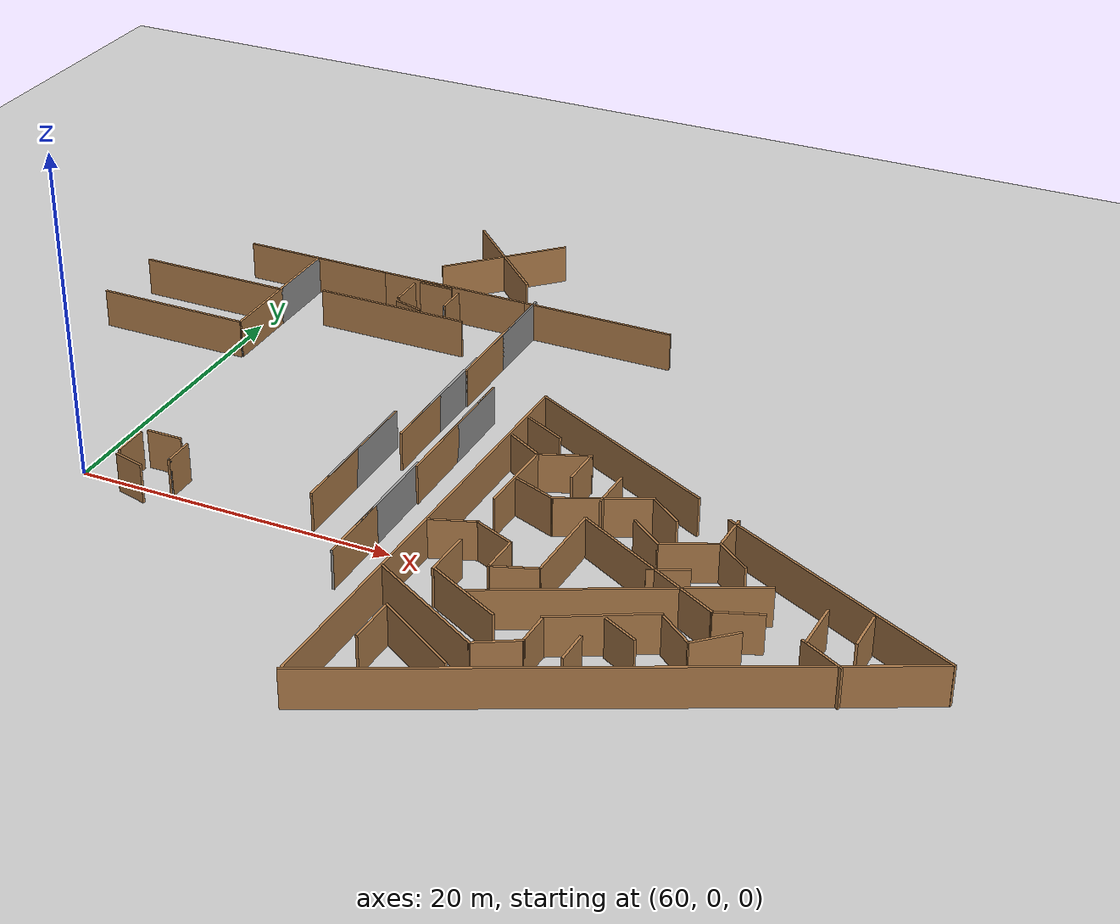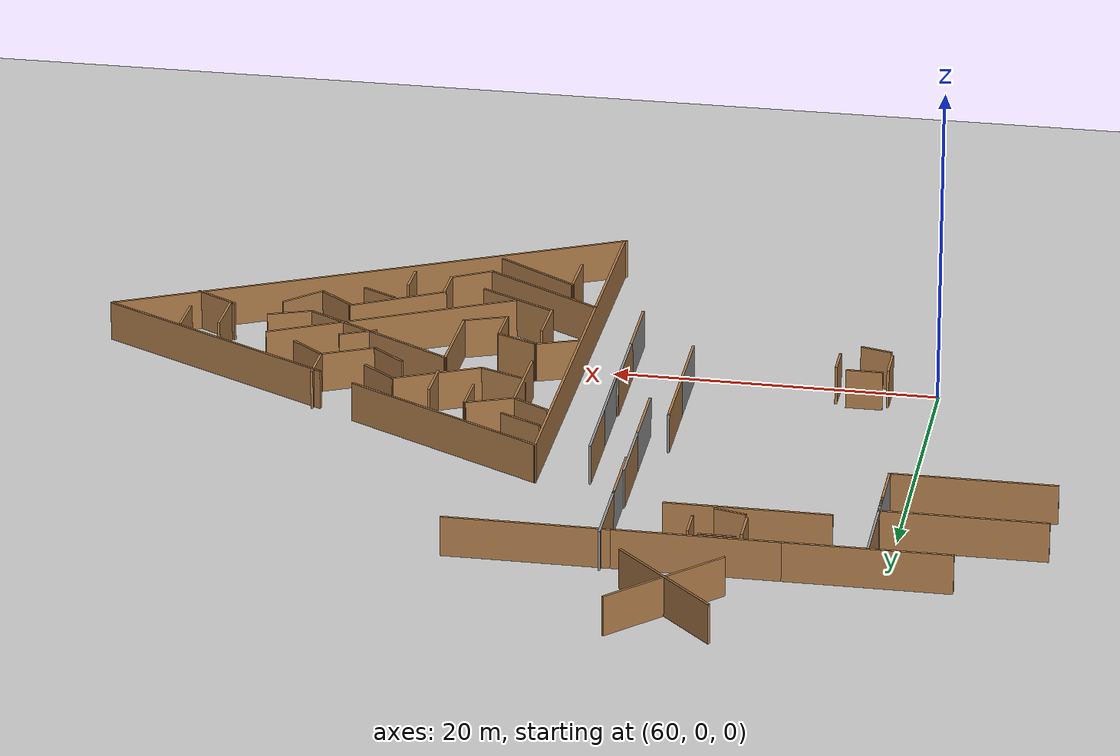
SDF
<sdf version="1.5">
 <world name="__default__">
  <model name="wall-10m-ofoghi_2">
   <pose>56 21 0 0 -0 0</pose>
   <link name="Wall_22">
    <collision name="Wall_22_Collision">
     <geometry><box><size>10 0.15 2.5</size></box></geometry>
     <pose>0 0 1.25 0 -0 0</pose>
    </collision>
    <visual name="Wall_22_Visual">
     <pose>0 0 1.25 0 -0 0</pose>
     <geometry><box><size>10 0.15 2.5</size></box></geometry>
     <material>
      <script><uri>file://media/materials/scripts/gazebo.material</uri><name>Gazebo/Wood</name></script>
      <ambient>1 1 1 1</ambient>
     </material>
    </visual>
   </link>
   <static>1</static>
  </model>
  <model name="wall-10m-ofoghi_3">
   <pose>81 26 0 0 -0 0</pose>
   <link name="Wall_22">
    <collision name="Wall_22_Collision">
     <geometry><box><size>10 0.15 2.5</size></box></geometry>
     <pose>0 0 1.25 0 -0 0</pose>
    </collision>
    <visual name="Wall_22_Visual">
     <pose>0 0 1.25 0 -0 0</pose>
     <geometry><box><size>10 0.15 2.5</size></box></geometry>
     <material>
      <script><uri>file://media/materials/scripts/gazebo.material</uri><name>Gazebo/Wood</name></script>
      <ambient>1 1 1 1</ambient>
     </material>
    </visual>
   </link>
   <static>1</static>
  </model>
  <model name="wall-10m-ofoghi_4">
   <pose>71 26 0 0 -0 0</pose>
   <link name="Wall_22">
    <collision name="Wall_22_Collision">
     <geometry><box><size>10 0.15 2.5</size></box></geometry>
     <pose>0 0 1.25 0 -0 0</pose>
    </collision>
    <visual name="Wall_22_Visual">
     <pose>0 0 1.25 0 -0 0</pose>
     <geometry><box><size>10 0.15 2.5</size></box></geometry>
     <material>
      <script><uri>file://media/materials/scripts/gazebo.material</uri><name>Gazebo/Wood</name></script>
      <ambient>1 1 1 1</ambient>
     </material>
    </visual>
   </link>
   <static>1</static>
  </model>
  <model name="wall-10m-ofoghi_5">
   <pose>61 26 0 0 -0 0</pose>
   <link name="Wall_22">
    <collision name="Wall_22_Collision">
     <geometry><box><size>10 0.15 2.5</size></box></geometry>
     <pose>0 0 1.25 0 -0 0</pose>
    </collision>
    <visual name="Wall_22_Visual">
     <pose>0 0 1.25 0 -0 0</pose>
     <geometry><box><size>10 0.15 2.5</size></box></geometry>
     <material>
      <script><uri>file://media/materials/scripts/gazebo.material</uri><name>Gazebo/Wood</name></script>
      <ambient>1 1 1 1</ambient>
     </material>
    </visual>
   </link>
   <static>1</static>
  </model>
  <model name="wall-10m-amodi_2_clone_1">
   <pose>78.8264 0.826129 0 0 -0 0</pose>
   <link name="Wall_24">
    <collision name="Wall_24_Collision">
     <geometry><box><size>10 0.15 2.5</size></box></geometry>
     <pose>0 0 1.25 0 -0 0</pose>
    </collision>
    <visual name="Wall_24_Visual">
     <pose>0 0 1.25 0 -0 0</pose>
     <geometry><box><size>10 0.15 2.5</size></box></geometry>
     <material>
      <script><uri>file://media/materials/scripts/gazebo.material</uri><name>Gazebo/Grey</name></script>
      <ambient>1 1 1 1</ambient>
     </material>
    </visual>
    <pose>0 -0 0 0 0 -1.5708</pose>
   </link>
   <link name="Wall_25">
    <collision name="Wall_25_Collision">
     <geometry><box><size>10 0.15 2.5</size></box></geometry>
     <pose>0 0 1.25 0 -0 0</pose>
    </collision>
    <visual name="Wall_25_Visual">
     <pose>0 0 1.25 0 -0 0</pose>
     <geometry><box><size>10 0.15 2.5</size></box></geometry>
     <material>
      <script><uri>file://media/materials/scripts/gazebo.material</uri><name>Gazebo/Wood</name></script>
      <ambient>1 1 1 1</ambient>
     </material>
    </visual>
    <pose>0 -0 0 0 -0 1.5708</pose>
   </link>
   <static>1</static>
  </model>
  <model name="wall-10m-amodi_2_clone_2">
   <pose>78.9551 10.33 0 0 -0 0</pose>
   <link name="Wall_24">
    <collision name="Wall_24_Collision">
     <geometry><box><size>10 0.15 2.5</size></box></geometry>
     <pose>0 0 1.25 0 -0 0</pose>
    </collision>
    <visual name="Wall_24_Visual">
     <pose>0 0 1.25 0 -0 0</pose>
     <geometry><box><size>10 0.15 2.5</size></box></geometry>
     <material>
      <script><uri>file://media/materials/scripts/gazebo.material</uri><name>Gazebo/Grey</name></script>
      <ambient>1 1 1 1</ambient>
     </material>
    </visual>
    <pose>0 -0 0 0 0 -1.5708</pose>
   </link>
   <link name="Wall_25">
    <collision name="Wall_25_Collision">
     <geometry><box><size>10 0.15 2.5</size></box></geometry>
     <pose>0 0 1.25 0 -0 0</pose>
    </collision>
    <visual name="Wall_25_Visual">
     <pose>0 0 1.25 0 -0 0</pose>
     <geometry><box><size>10 0.15 2.5</size></box></geometry>
     <material>
      <script><uri>file://media/materials/scripts/gazebo.material</uri><name>Gazebo/Wood</name></script>
      <ambient>1 1 1 1</ambient>
     </material>
    </visual>
    <pose>0 -0 0 0 -0 1.5708</pose>
   </link>
   <static>1</static>
  </model>
  <model name="wall-10m-amodi_2_clone_3">
   <pose>75.024 5.31482 0 0 -0 0</pose>
   <link name="Wall_24">
    <collision name="Wall_24_Collision">
     <geometry><box><size>10 0.15 2.5</size></box></geometry>
     <pose>0 0 1.25 0 -0 0</pose>
    </collision>
    <visual name="Wall_24_Visual">
     <pose>0 0 1.25 0 -0 0</pose>
     <geometry><box><size>10 0.15 2.5</size></box></geometry>
     <material>
      <script><uri>file://media/materials/scripts/gazebo.material</uri><name>Gazebo/Grey</name></script>
      <ambient>1 1 1 1</ambient>
     </material>
    </visual>
    <pose>0 -0 0 0 0 -1.5708</pose>
   </link>
   <link name="Wall_25">
    <collision name="Wall_25_Collision">
     <geometry><box><size>10 0.15 2.5</size></box></geometry>
     <pose>0 0 1.25 0 -0 0</pose>
    </collision>
    <visual name="Wall_25_Visual">
     <pose>0 0 1.25 0 -0 0</pose>
     <geometry><box><size>10 0.15 2.5</size></box></geometry>
     <material>
      <script><uri>file://media/materials/scripts/gazebo.material</uri><name>Gazebo/Wood</name></script>
      <ambient>1 1 1 1</ambient>
     </material>
    </visual>
    <pose>0 -0 0 0 -0 1.5708</pose>
   </link>
   <static>1</static>
  </model>
  <model name="wall-10m-amodi_2_clone_5">
   <pose>76.4715 13.1551 0 0 -0 0</pose>
   <link name="Wall_24">
    <collision name="Wall_24_Collision">
     <geometry><box><size>10 0.15 2.5</size></box></geometry>
     <pose>0 0 1.25 0 -0 0</pose>
    </collision>
    <visual name="Wall_24_Visual">
     <pose>0 0 1.25 0 -0 0</pose>
     <geometry><box><size>10 0.15 2.5</size></box></geometry>
     <material>
      <script><uri>file://media/materials/scripts/gazebo.material</uri><name>Gazebo/Grey</name></script>
      <ambient>1 1 1 1</ambient>
     </material>
    </visual>
    <pose>0 -0 0 0 0 -1.5708</pose>
   </link>
   <link name="Wall_25">
    <collision name="Wall_25_Collision">
     <geometry><box><size>10 0.15 2.5</size></box></geometry>
     <pose>0 0 1.25 0 -0 0</pose>
    </collision>
    <visual name="Wall_25_Visual">
     <pose>0 0 1.25 0 -0 0</pose>
     <geometry><box><size>10 0.15 2.5</size></box></geometry>
     <material>
      <script><uri>file://media/materials/scripts/gazebo.material</uri><name>Gazebo/Wood</name></script>
      <ambient>1 1 1 1</ambient>
     </material>
    </visual>
    <pose>0 -0 0 0 -0 1.5708</pose>
   </link>
   <static>1</static>
  </model>
  <model name="wall-10m-amodi_2_clone_6">
   <pose>76.5849 21.4298 0 0 -0 0</pose>
   <link name="Wall_24">
    <collision name="Wall_24_Collision">
     <geometry><box><size>10 0.15 2.5</size></box></geometry>
     <pose>0 0 1.25 0 -0 0</pose>
    </collision>
    <visual name="Wall_24_Visual">
     <pose>0 0 1.25 0 -0 0</pose>
     <geometry><box><size>10 0.15 2.5</size></box></geometry>
     <material>
      <script><uri>file://media/materials/scripts/gazebo.material</uri><name>Gazebo/Grey</name></script>
      <ambient>1 1 1 1</ambient>
     </material>
    </visual>
    <pose>0 -0 0 0 0 -1.5708</pose>
   </link>
   <link name="Wall_25">
    <collision name="Wall_25_Collision">
     <geometry><box><size>10 0.15 2.5</size></box></geometry>
     <pose>0 0 1.25 0 -0 0</pose>
    </collision>
    <visual name="Wall_25_Visual">
     <pose>0 0 1.25 0 -0 0</pose>
     <geometry><box><size>10 0.15 2.5</size></box></geometry>
     <material>
      <script><uri>file://media/materials/scripts/gazebo.material</uri><name>Gazebo/Wood</name></script>
      <ambient>1 1 1 1</ambient>
     </material>
    </visual>
    <pose>0 -0 0 0 -0 1.5708</pose>
   </link>
   <static>1</static>
  </model>
  <model name="wall-10m-amodi_5">
   <pose>61 21 0 0 -0 0</pose>
   <link name="Wall_24">
    <collision name="Wall_24_Collision">
     <geometry><box><size>10 0.15 2.5</size></box></geometry>
     <pose>0 0 1.25 0 -0 0</pose>
    </collision>
    <visual name="Wall_24_Visual">
     <pose>0 0 1.25 0 -0 0</pose>
     <geometry><box><size>10 0.15 2.5</size></box></geometry>
     <material>
      <script><uri>file://media/materials/scripts/gazebo.material</uri><name>Gazebo/Grey</name></script>
      <ambient>1 1 1 1</ambient>
     </material>
    </visual>
    <pose>0 -0 0 0 0 -1.5708</pose>
   </link>
   <link name="Wall_25">
    <collision name="Wall_25_Collision">
     <geometry><box><size>10 0.15 2.5</size></box></geometry>
     <pose>0 0 1.25 0 -0 0</pose>
    </collision>
    <visual name="Wall_25_Visual">
     <pose>0 0 1.25 0 -0 0</pose>
     <geometry><box><size>10 0.15 2.5</size></box></geometry>
     <material>
      <script><uri>file://media/materials/scripts/gazebo.material</uri><name>Gazebo/Wood</name></script>
      <ambient>1 1 1 1</ambient>
     </material>
    </visual>
    <pose>0 -0 0 0 -0 1.5708</pose>
   </link>
   <static>1</static>
  </model>
  <model name="wall-10m-ofoghi_7">
   <pose>56 16 0 0 -0 0</pose>
   <link name="Wall_22">
    <collision name="Wall_22_Collision">
     <geometry><box><size>10 0.15 2.5</size></box></geometry>
     <pose>0 0 1.25 0 -0 0</pose>
    </collision>
    <visual name="Wall_22_Visual">
     <pose>0 0 1.25 0 -0 0</pose>
     <geometry><box><size>10 0.15 2.5</size></box></geometry>
     <material>
      <script><uri>file://media/materials/scripts/gazebo.material</uri><name>Gazebo/Wood</name></script>
      <ambient>1 1 1 1</ambient>
     </material>
    </visual>
   </link>
   <static>1</static>
  </model>
  <model name="tr_layout_1">
   <pose>96.6292 0.322461 0 0 0 -1.58947</pose>
   <link name="Wall_0">
    <collision name="Wall_0_Collision">
     <geometry><box><size>30.15 0.15 2.5</size></box></geometry>
     <pose>0 0 1.25 0 -0 0</pose>
    </collision>
    <visual name="Wall_0_Visual">
     <pose>0 0 1.25 0 -0 0</pose>
     <geometry><box><size>30.15 0.15 2.5</size></box></geometry>
     <material>
      <script><uri>file://media/materials/scripts/gazebo.material</uri><name>Gazebo/Wood</name></script>
      <ambient>1 1 1 1</ambient>
     </material>
    </visual>
    <pose>-0.040638 -14.7092 0 0 -0 0</pose>
   </link>
   <link name="Wall_2">
    <collision name="Wall_2_Collision">
     <geometry><box><size>14.059 0.15 2.5</size></box></geometry>
     <pose>0 0 1.25 0 -0 0</pose>
    </collision>
    <visual name="Wall_2_Visual">
     <pose>0 0 1.25 0 -0 0</pose>
     <geometry><box><size>14.059 0.15 2.5</size></box></geometry>
     <material>
      <script><uri>file://media/materials/scripts/gazebo.material</uri><name>Gazebo/Wood</name></script>
      <ambient>1 1 1 1</ambient>
     </material>
    </visual>
    <pose>-11.8706 -8.51916 0 0 -0 1.0975</pose>
   </link>
   <link name="Wall_4">
    <collision name="Wall_4_Collision">
     <geometry><box><size>33.2446 0.15 2.5</size></box></geometry>
     <pose>0 0 1.25 0 -0 0</pose>
    </collision>
    <visual name="Wall_4_Visual">
     <pose>0 0 1.25 0 -0 0</pose>
     <geometry><box><size>33.2446 0.15 2.5</size></box></geometry>
     <material>
      <script><uri>file://media/materials/scripts/gazebo.material</uri><name>Gazebo/Wood</name></script>
      <ambient>1 1 1 1</ambient>
     </material>
    </visual>
    <pose>7.54073 -0.040527 0 0 0 -1.10039</pose>
   </link>
   <link name="Wall_6">
    <collision name="Wall_6_Collision">
     <geometry><box><size>16.6075 0.15 2.5</size></box></geometry>
     <pose>0 0 1.25 0 -0 0</pose>
    </collision>
    <visual name="Wall_6_Visual">
     <pose>0 0 1.25 0 -0 0</pose>
     <geometry><box><size>16.6075 0.15 2.5</size></box></geometry>
     <material>
      <script><uri>file://media/materials/scripts/gazebo.material</uri><name>Gazebo/Wood</name></script>
      <ambient>1 1 1 1</ambient>
     </material>
    </visual>
    <pose>-3.70064 7.42084 0 0 -0 1.10987</pose>
   </link>
   <static>1</static>
  </model>
  <model name="tr_maze_4">
   <pose>94.3115 0.976283 0 0 0 -1.6021</pose>
   <link name="Wall_0">
    <collision name="Wall_0_Collision">
     <geometry><box><size>2.92308 0.15 2.5</size></box></geometry>
     <pose>0 0 1.25 0 -0 0</pose>
    </collision>
    <visual name="Wall_0_Visual">
     <pose>0 0 1.25 0 -0 0</pose>
     <geometry><box><size>2.92308 0.15 2.5</size></box></geometry>
     <material>
      <script><uri>file://media/materials/scripts/gazebo.material</uri><name>Gazebo/Wood</name></script>
      <ambient>1 1 1 1</ambient>
     </material>
    </visual>
    <pose>-11.0014 -10.9997 0 0 -0 1.12328</pose>
   </link>
   <link name="Wall_10">
    <collision name="Wall_10_Collision">
     <geometry><box><size>3.12321 0.15 2.5</size></box></geometry>
     <pose>0 0 1.25 0 -0 0</pose>
    </collision>
    <visual name="Wall_10_Visual">
     <pose>0 0 1.25 0 -0 0</pose>
     <geometry><box><size>3.12321 0.15 2.5</size></box></geometry>
     <material>
      <script><uri>file://media/materials/scripts/gazebo.material</uri><name>Gazebo/Wood</name></script>
      <ambient>1 1 1 1</ambient>
     </material>
    </visual>
    <pose>-4.90142 -8.64967 0 0 -0 1.22777</pose>
   </link>
   <link name="Wall_12">
    <collision name="Wall_12_Collision">
     <geometry><box><size>5.74017 0.15 2.5</size></box></geometry>
     <pose>0 0 1.25 0 -0 0</pose>
    </collision>
    <visual name="Wall_12_Visual">
     <pose>0 0 1.25 0 -0 0</pose>
     <geometry><box><size>5.74017 0.15 2.5</size></box></geometry>
     <material>
      <script><uri>file://media/materials/scripts/gazebo.material</uri><name>Gazebo/Wood</name></script>
      <ambient>0.996078 0.47451 0.0196078 1</ambient>
     </material>
    </visual>
    <pose>-5.65142 -4.74967 0 0 -0 2.03444</pose>
   </link>
   <link name="Wall_14">
    <collision name="Wall_14_Collision">
     <geometry><box><size>2.75 0.15 2.5</size></box></geometry>
     <pose>0 0 1.25 0 -0 0</pose>
    </collision>
    <visual name="Wall_14_Visual">
     <pose>0 0 1.25 0 -0 0</pose>
     <geometry><box><size>2.75 0.15 2.5</size></box></geometry>
     <material>
      <script><uri>file://media/materials/scripts/gazebo.material</uri><name>Gazebo/Wood</name></script>
      <ambient>0.996078 0.47451 0.0196078 1</ambient>
     </material>
    </visual>
    <pose>-6.70142 -4.74967 0 0 -0 3.14159</pose>
   </link>
   <link name="Wall_16">
    <collision name="Wall_16_Collision">
     <geometry><box><size>2.65 0.15 2.5</size></box></geometry>
     <pose>0 0 1.25 0 -0 0</pose>
    </collision>
    <visual name="Wall_16_Visual">
     <pose>0 0 1.25 0 -0 0</pose>
     <geometry><box><size>2.65 0.15 2.5</size></box></geometry>
     <material>
      <script><uri>file://media/materials/scripts/gazebo.material</uri><name>Gazebo/Wood</name></script>
      <ambient>0.996078 0.47451 0.0196078 1</ambient>
     </material>
    </visual>
    <pose>-6.15142 -1.24967 0 0 -0 0.927295</pose>
   </link>
   <link name="Wall_18">
    <collision name="Wall_18_Collision">
     <geometry><box><size>2.65 0.15 2.5</size></box></geometry>
     <pose>0 0 1.25 0 -0 0</pose>
    </collision>
    <visual name="Wall_18_Visual">
     <pose>0 0 1.25 0 -0 0</pose>
     <geometry><box><size>2.65 0.15 2.5</size></box></geometry>
     <material>
      <script><uri>file://media/materials/scripts/gazebo.material</uri><name>Gazebo/Wood</name></script>
      <ambient>0.996078 0.47451 0.0196078 1</ambient>
     </material>
    </visual>
    <pose>-3.65142 -1.24967 0 0 -0 0.927295</pose>
   </link>
   <link name="Wall_2">
    <collision name="Wall_2_Collision">
     <geometry><box><size>2.65599 0.15 2.5</size></box></geometry>
     <pose>0 0 1.25 0 -0 0</pose>
    </collision>
    <visual name="Wall_2_Visual">
     <pose>0 0 1.25 0 -0 0</pose>
     <geometry><box><size>2.65599 0.15 2.5</size></box></geometry>
     <material>
      <script><uri>file://media/materials/scripts/gazebo.material</uri><name>Gazebo/Wood</name></script>
      <ambient>1 1 1 1</ambient>
     </material>
    </visual>
    <pose>-8.80142 -11.1497 0 0 -0 1.07145</pose>
   </link>
   <link name="Wall_20">
    <collision name="Wall_20_Collision">
     <geometry><box><size>3.5041 0.15 2.5</size></box></geometry>
     <pose>0 0 1.25 0 -0 0</pose>
    </collision>
    <visual name="Wall_20_Visual">
     <pose>0 0 1.25 0 -0 0</pose>
     <geometry><box><size>3.5041 0.15 2.5</size></box></geometry>
     <material>
      <script><uri>file://media/materials/scripts/gazebo.material</uri><name>Gazebo/Wood</name></script>
      <ambient>0.996078 0.47451 0.0196078 1</ambient>
     </material>
    </visual>
    <pose>-3.65142 1.25033 0 0 -0 2.03444</pose>
   </link>
   <link name="Wall_22">
    <collision name="Wall_22_Collision">
     <geometry><box><size>2.65 0.15 2.5</size></box></geometry>
     <pose>0 0 1.25 0 -0 0</pose>
    </collision>
    <visual name="Wall_22_Visual">
     <pose>0 0 1.25 0 -0 0</pose>
     <geometry><box><size>2.65 0.15 2.5</size></box></geometry>
     <material>
      <script><uri>file://media/materials/scripts/gazebo.material</uri><name>Gazebo/Wood</name></script>
      <ambient>0.996078 0.47451 0.0196078 1</ambient>
     </material>
    </visual>
    <pose>-3.65142 3.75034 0 0 -0 0.927295</pose>
   </link>
   <link name="Wall_24">
    <collision name="Wall_24_Collision">
     <geometry><box><size>2.65 0.15 2.5</size></box></geometry>
     <pose>0 0 1.25 0 -0 0</pose>
    </collision>
    <visual name="Wall_24_Visual">
     <pose>0 0 1.25 0 -0 0</pose>
     <geometry><box><size>2.65 0.15 2.5</size></box></geometry>
     <material>
      <script><uri>file://media/materials/scripts/gazebo.material</uri><name>Gazebo/Wood</name></script>
      <ambient>0.996078 0.47451 0.0196078 1</ambient>
     </material>
    </visual>
    <pose>-5.65142 2.75034 0 0 -0 3.14159</pose>
   </link>
   <link name="Wall_26">
    <collision name="Wall_26_Collision">
     <geometry><box><size>2.84258 0.15 2.5</size></box></geometry>
     <pose>0 0 1.25 0 -0 0</pose>
    </collision>
    <visual name="Wall_26_Visual">
     <pose>0 0 1.25 0 -0 0</pose>
     <geometry><box><size>2.84258 0.15 2.5</size></box></geometry>
     <material>
      <script><uri>file://media/materials/scripts/gazebo.material</uri><name>Gazebo/Wood</name></script>
      <ambient>1 1 1 1</ambient>
     </material>
    </visual>
    <pose>0.098585 -10.9997 0 0 -0 1.9513</pose>
   </link>
   <link name="Wall_28">
    <collision name="Wall_28_Collision">
     <geometry><box><size>2.84258 0.15 2.5</size></box></geometry>
     <pose>0 0 1.25 0 -0 0</pose>
    </collision>
    <visual name="Wall_28_Visual">
     <pose>0 0 1.25 0 -0 0</pose>
     <geometry><box><size>2.84258 0.15 2.5</size></box></geometry>
     <material>
      <script><uri>file://media/materials/scripts/gazebo.material</uri><name>Gazebo/Wood</name></script>
      <ambient>1 1 1 1</ambient>
     </material>
    </visual>
    <pose>0.098585 -8.49967 0 0 -0 1.19029</pose>
   </link>
   <link name="Wall_30">
    <collision name="Wall_30_Collision">
     <geometry><box><size>2.65 0.15 2.5</size></box></geometry>
     <pose>0 0 1.25 0 -0 0</pose>
    </collision>
    <visual name="Wall_30_Visual">
     <pose>0 0 1.25 0 -0 0</pose>
     <geometry><box><size>2.65 0.15 2.5</size></box></geometry>
     <material>
      <script><uri>file://media/materials/scripts/gazebo.material</uri><name>Gazebo/Wood</name></script>
      <ambient>1 1 1 1</ambient>
     </material>
    </visual>
    <pose>1.84858 -7.24967 0 0 -0 0</pose>
   </link>
   <link name="Wall_32">
    <collision name="Wall_32_Collision">
     <geometry><box><size>2.84258 0.15 2.5</size></box></geometry>
     <pose>0 0 1.25 0 -0 0</pose>
    </collision>
    <visual name="Wall_32_Visual">
     <pose>0 0 1.25 0 -0 0</pose>
     <geometry><box><size>2.84258 0.15 2.5</size></box></geometry>
     <material>
      <script><uri>file://media/materials/scripts/gazebo.material</uri><name>Gazebo/Wood</name></script>
      <ambient>1 1 1 1</ambient>
     </material>
    </visual>
    <pose>2.59858 -5.99967 0 0 -0 1.9513</pose>
   </link>
   <link name="Wall_34">
    <collision name="Wall_34_Collision">
     <geometry><box><size>5.65 0.15 2.5</size></box></geometry>
     <pose>0 0 1.25 0 -0 0</pose>
    </collision>
    <visual name="Wall_34_Visual">
     <pose>0 0 1.25 0 -0 0</pose>
     <geometry><box><size>5.65 0.15 2.5</size></box></geometry>
     <material>
      <script><uri>file://media/materials/scripts/gazebo.material</uri><name>Gazebo/Wood</name></script>
      <ambient>1 1 1 1</ambient>
     </material>
    </visual>
    <pose>-0.651415 -4.74967 0 0 -0 3.14159</pose>
   </link>
   <link name="Wall_36">
    <collision name="Wall_36_Collision">
     <geometry><box><size>10.8855 0.15 2.5</size></box></geometry>
     <pose>0 0 1.25 0 -0 0</pose>
    </collision>
    <visual name="Wall_36_Visual">
     <pose>0 0 1.25 0 -0 0</pose>
     <geometry><box><size>10.8855 0.15 2.5</size></box></geometry>
     <material>
      <script><uri>file://media/materials/scripts/gazebo.material</uri><name>Gazebo/Wood</name></script>
      <ambient>0.996078 0.47451 0.0196078 1</ambient>
     </material>
    </visual>
    <pose>-0.901415 0.000335 0 0 -0 1.08632</pose>
   </link>
   <link name="Wall_38">
    <collision name="Wall_38_Collision">
     <geometry><box><size>2.38607 0.15 2.5</size></box></geometry>
     <pose>0 0 1.25 0 -0 0</pose>
    </collision>
    <visual name="Wall_38_Visual">
     <pose>0 0 1.25 0 -0 0</pose>
     <geometry><box><size>2.38607 0.15 2.5</size></box></geometry>
     <material>
      <script><uri>file://media/materials/scripts/gazebo.material</uri><name>Gazebo/Wood</name></script>
      <ambient>0.996078 0.47451 0.0196078 1</ambient>
     </material>
    </visual>
    <pose>-0.901415 1.25033 0 0 -0 2.03444</pose>
   </link>
   <link name="Wall_4">
    <collision name="Wall_4_Collision">
     <geometry><box><size>5.45 0.15 2.5</size></box></geometry>
     <pose>0 0 1.25 0 -0 0</pose>
    </collision>
    <visual name="Wall_4_Visual">
     <pose>0 0 1.25 0 -0 0</pose>
     <geometry><box><size>5.45 0.15 2.5</size></box></geometry>
     <material>
      <script><uri>file://media/materials/scripts/gazebo.material</uri><name>Gazebo/Wood</name></script>
      <ambient>1 1 1 1</ambient>
     </material>
    </visual>
    <pose>-5.55142 -10.0497 0 0 -0 0</pose>
   </link>
   <link name="Wall_40">
    <collision name="Wall_40_Collision">
     <geometry><box><size>2.84258 0.15 2.5</size></box></geometry>
     <pose>0 0 1.25 0 -0 0</pose>
    </collision>
    <visual name="Wall_40_Visual">
     <pose>0 0 1.25 0 -0 0</pose>
     <geometry><box><size>2.84258 0.15 2.5</size></box></geometry>
     <material>
      <script><uri>file://media/materials/scripts/gazebo.material</uri><name>Gazebo/Wood</name></script>
      <ambient>0.996078 0.47451 0.0196078 1</ambient>
     </material>
    </visual>
    <pose>1.09858 6.00033 0 0 -0 1.9513</pose>
   </link>
   <link name="Wall_42">
    <collision name="Wall_42_Collision">
     <geometry><box><size>16.0324 0.15 2.5</size></box></geometry>
     <pose>0 0 1.25 0 -0 0</pose>
    </collision>
    <visual name="Wall_42_Visual">
     <pose>0 0 1.25 0 -0 0</pose>
     <geometry><box><size>16.0324 0.15 2.5</size></box></geometry>
     <material>
      <script><uri>file://media/materials/scripts/gazebo.material</uri><name>Gazebo/Wood</name></script>
      <ambient>0.996078 0.47451 0.0196078 1</ambient>
     </material>
    </visual>
    <pose>1.84858 -0.249665 0 0 -0 2.06261</pose>
   </link>
   <link name="Wall_44">
    <collision name="Wall_44_Collision">
     <geometry><box><size>5.29296 0.15 2.5</size></box></geometry>
     <pose>0 0 1.25 0 -0 0</pose>
    </collision>
    <visual name="Wall_44_Visual">
     <pose>0 0 1.25 0 -0 0</pose>
     <geometry><box><size>5.29296 0.15 2.5</size></box></geometry>
     <material>
      <script><uri>file://media/materials/scripts/gazebo.material</uri><name>Gazebo/Wood</name></script>
      <ambient>1 1 1 1</ambient>
     </material>
    </visual>
    <pose>5.74858 -7.34966 0 0 -0 1.10715</pose>
   </link>
   <link name="Wall_46">
    <collision name="Wall_46_Collision">
     <geometry><box><size>3.15 0.15 2.5</size></box></geometry>
     <pose>0 0 1.25 0 -0 0</pose>
    </collision>
    <visual name="Wall_46_Visual">
     <pose>0 0 1.25 0 -0 0</pose>
     <geometry><box><size>3.15 0.15 2.5</size></box></geometry>
     <material>
      <script><uri>file://media/materials/scripts/gazebo.material</uri><name>Gazebo/Wood</name></script>
      <ambient>1 1 1 1</ambient>
     </material>
    </visual>
    <pose>3.09858 -9.74967 0 0 -0 3.14159</pose>
   </link>
   <link name="Wall_48">
    <collision name="Wall_48_Collision">
     <geometry><box><size>8.47406 0.15 2.5</size></box></geometry>
     <pose>0 0 1.25 0 -0 0</pose>
    </collision>
    <visual name="Wall_48_Visual">
     <pose>0 0 1.25 0 -0 0</pose>
     <geometry><box><size>8.47406 0.15 2.5</size></box></geometry>
     <material>
      <script><uri>file://media/materials/scripts/gazebo.material</uri><name>Gazebo/Wood</name></script>
      <ambient>1 1 1 1</ambient>
     </material>
    </visual>
    <pose>7.59858 -8.59966 0 0 -0 1.06953</pose>
   </link>
   <link name="Wall_50">
    <collision name="Wall_50_Collision">
     <geometry><box><size>2.84258 0.15 2.5</size></box></geometry>
     <pose>0 0 1.25 0 -0 0</pose>
    </collision>
    <visual name="Wall_50_Visual">
     <pose>0 0 1.25 0 -0 0</pose>
     <geometry><box><size>2.84258 0.15 2.5</size></box></geometry>
     <material>
      <script><uri>file://media/materials/scripts/gazebo.material</uri><name>Gazebo/Wood</name></script>
      <ambient>1 1 1 1</ambient>
     </material>
    </visual>
    <pose>8.89858 -3.79967 0 0 -0 2.11759</pose>
   </link>
   <link name="Wall_52">
    <collision name="Wall_52_Collision">
     <geometry><box><size>2.25 0.15 2.5</size></box></geometry>
     <pose>0 0 1.25 0 -0 0</pose>
    </collision>
    <visual name="Wall_52_Visual">
     <pose>0 0 1.25 0 -0 0</pose>
     <geometry><box><size>2.25 0.15 2.5</size></box></geometry>
     <material>
      <script><uri>file://media/materials/scripts/gazebo.material</uri><name>Gazebo/Wood</name></script>
      <ambient>1 1 1 1</ambient>
     </material>
    </visual>
    <pose>7.14858 -2.64966 0 0 -0 3.14159</pose>
   </link>
   <link name="Wall_54">
    <collision name="Wall_54_Collision">
     <geometry><box><size>6.25 0.15 2.5</size></box></geometry>
     <pose>0 0 1.25 0 -0 0</pose>
    </collision>
    <visual name="Wall_54_Visual">
     <pose>0 0 1.25 0 -0 0</pose>
     <geometry><box><size>6.25 0.15 2.5</size></box></geometry>
     <material>
      <script><uri>file://media/materials/scripts/gazebo.material</uri><name>Gazebo/Wood</name></script>
      <ambient>1 1 1 1</ambient>
     </material>
    </visual>
    <pose>4.42709 -0.065034 0 0 -0 2.0944</pose>
   </link>
   <link name="Wall_56">
    <collision name="Wall_56_Collision">
     <geometry><box><size>2.65 0.15 2.5</size></box></geometry>
     <pose>0 0 1.25 0 -0 0</pose>
    </collision>
    <visual name="Wall_56_Visual">
     <pose>0 0 1.25 0 -0 0</pose>
     <geometry><box><size>2.65 0.15 2.5</size></box></geometry>
     <material>
      <script><uri>file://media/materials/scripts/gazebo.material</uri><name>Gazebo/Wood</name></script>
      <ambient>1 1 1 1</ambient>
     </material>
    </visual>
    <pose>3.84858 3.75034 0 0 -0 0.927295</pose>
   </link>
   <link name="Wall_58">
    <collision name="Wall_58_Collision">
     <geometry><box><size>2.97843 0.15 2.5</size></box></geometry>
     <pose>0 0 1.25 0 -0 0</pose>
    </collision>
    <visual name="Wall_58_Visual">
     <pose>0 0 1.25 0 -0 0</pose>
     <geometry><box><size>2.97843 0.15 2.5</size></box></geometry>
     <material>
      <script><uri>file://media/materials/scripts/gazebo.material</uri><name>Gazebo/Wood</name></script>
      <ambient>1 1 1 1</ambient>
     </material>
    </visual>
    <pose>3.59858 5.75033 0 0 -0 2.35619</pose>
   </link>
   <link name="Wall_6">
    <collision name="Wall_6_Collision">
     <geometry><box><size>3.19631 0.15 2.5</size></box></geometry>
     <pose>0 0 1.25 0 -0 0</pose>
    </collision>
    <visual name="Wall_6_Visual">
     <pose>0 0 1.25 0 -0 0</pose>
     <geometry><box><size>3.19631 0.15 2.5</size></box></geometry>
     <material>
      <script><uri>file://media/materials/scripts/gazebo.material</uri><name>Gazebo/Wood</name></script>
      <ambient>1 1 1 1</ambient>
     </material>
    </visual>
    <pose>-8.80142 -8.64967 0 0 -0 1.97569</pose>
   </link>
   <link name="Wall_60">
    <collision name="Wall_60_Collision">
     <geometry><box><size>3.15 0.15 2.5</size></box></geometry>
     <pose>0 0 1.25 0 -0 0</pose>
    </collision>
    <visual name="Wall_60_Visual">
     <pose>0 0 1.25 0 -0 0</pose>
     <geometry><box><size>3.15 0.15 2.5</size></box></geometry>
     <material>
      <script><uri>file://media/materials/scripts/gazebo.material</uri><name>Gazebo/Wood</name></script>
      <ambient>1 1 1 1</ambient>
     </material>
    </visual>
    <pose>10.0986 -10.2497 0 0 -0 3.14159</pose>
   </link>
   <link name="Wall_62">
    <collision name="Wall_62_Collision">
     <geometry><box><size>5.98095 0.15 2.5</size></box></geometry>
     <pose>0 0 1.25 0 -0 0</pose>
    </collision>
    <visual name="Wall_62_Visual">
     <pose>0 0 1.25 0 -0 0</pose>
     <geometry><box><size>5.98095 0.15 2.5</size></box></geometry>
     <material>
      <script><uri>file://media/materials/scripts/gazebo.material</uri><name>Gazebo/Wood</name></script>
      <ambient>1 1 1 1</ambient>
     </material>
    </visual>
    <pose>10.0986 -7.74967 0 0 -0 1.03038</pose>
   </link>
   <link name="Wall_64">
    <collision name="Wall_64_Collision">
     <geometry><box><size>2.15 0.15 2.5</size></box></geometry>
     <pose>0 0 1.25 0 -0 0</pose>
    </collision>
    <visual name="Wall_64_Visual">
     <pose>0 0 1.25 0 -0 0</pose>
     <geometry><box><size>2.15 0.15 2.5</size></box></geometry>
     <material>
      <script><uri>file://media/materials/scripts/gazebo.material</uri><name>Gazebo/Wood</name></script>
      <ambient>1 1 1 1</ambient>
     </material>
    </visual>
    <pose>7.59858 -0.249665 0 0 -0 3.14159</pose>
   </link>
   <link name="Wall_66">
    <collision name="Wall_66_Collision">
     <geometry><box><size>2.9678 0.15 2.5</size></box></geometry>
     <pose>0 0 1.25 0 -0 0</pose>
    </collision>
    <visual name="Wall_66_Visual">
     <pose>0 0 1.25 0 -0 0</pose>
     <geometry><box><size>2.9678 0.15 2.5</size></box></geometry>
     <material>
      <script><uri>file://media/materials/scripts/gazebo.material</uri><name>Gazebo/Wood</name></script>
      <ambient>0.996078 0.47451 0.0196078 1</ambient>
     </material>
    </visual>
    <pose>2.44859 11.0003 0 0 0 -2.05032</pose>
   </link>
   <link name="Wall_68">
    <collision name="Wall_68_Collision">
     <geometry><box><size>3.15 0.15 2.5</size></box></geometry>
     <pose>0 0 1.25 0 -0 0</pose>
    </collision>
    <visual name="Wall_68_Visual">
     <pose>0 0 1.25 0 -0 0</pose>
     <geometry><box><size>3.15 0.15 2.5</size></box></geometry>
     <material>
      <script><uri>file://media/materials/scripts/gazebo.material</uri><name>Gazebo/Wood</name></script>
      <ambient>0.996078 0.47451 0.0196078 1</ambient>
     </material>
    </visual>
    <pose>0.298584 9.95034 0 0 -0 3.14159</pose>
   </link>
   <link name="Wall_70">
    <collision name="Wall_70_Collision">
     <geometry><box><size>2.65 0.15 2.5</size></box></geometry>
     <pose>0 0 1.25 0 -0 0</pose>
    </collision>
    <visual name="Wall_70_Visual">
     <pose>0 0 1.25 0 -0 0</pose>
     <geometry><box><size>2.65 0.15 2.5</size></box></geometry>
     <material>
      <script><uri>file://media/materials/scripts/gazebo.material</uri><name>Gazebo/Wood</name></script>
      <ambient>1 1 1 1</ambient>
     </material>
    </visual>
    <pose>-0.451416 12.2503 0 0 -0 3.14159</pose>
   </link>
   <link name="Wall_72">
    <collision name="Wall_72_Collision">
     <geometry><box><size>2.38607 0.15 2.5</size></box></geometry>
     <pose>0 0 1.25 0 -0 0</pose>
    </collision>
    <visual name="Wall_72_Visual">
     <pose>0 0 1.25 0 -0 0</pose>
     <geometry><box><size>2.38607 0.15 2.5</size></box></geometry>
     <material>
      <script><uri>file://media/materials/scripts/gazebo.material</uri><name>Gazebo/Wood</name></script>
      <ambient>1 1 1 1</ambient>
     </material>
    </visual>
    <pose>5.09858 1.25033 0 0 -0 1.10715</pose>
   </link>
   <link name="Wall_8">
    <collision name="Wall_8_Collision">
     <geometry><box><size>2.65 0.15 2.5</size></box></geometry>
     <pose>0 0 1.25 0 -0 0</pose>
    </collision>
    <visual name="Wall_8_Visual">
     <pose>0 0 1.25 0 -0 0</pose>
     <geometry><box><size>2.65 0.15 2.5</size></box></geometry>
     <material>
      <script><uri>file://media/materials/scripts/gazebo.material</uri><name>Gazebo/Wood</name></script>
      <ambient>1 1 1 1</ambient>
     </material>
    </visual>
    <pose>-8.15142 -7.24967 0 0 -0 0</pose>
   </link>
   <static>1</static>
  </model>
  <model name="ground_plane">
   <static>1</static>
   <link name="link">
    <collision name="collision">
     <geometry><plane><normal>0 0 1</normal><size>100 100</size></plane></geometry>
     <surface><friction><ode><mu>100</mu><mu2>50</mu2></ode></friction></surface>
    </collision>
    <visual name="visual">
     <cast_shadows>0</cast_shadows>
     <geometry><plane><normal>0 0 1</normal><size>100 100</size></plane></geometry>
     <material>
      <script><uri>file://media/materials/scripts/gazebo.material</uri><name>Gazebo/Grey</name></script>
     </material>
    </visual>
   </link>
   <pose>62 -10 0 0 -0 0</pose>
  </model>
  <model name="obs1">
   <pose>64.4405 0.508133 0 0 -0 0</pose>
   <link name="Wall_10">
    <collision name="Wall_10_Collision">
     <geometry><box><size>2 0.15 2.5</size></box></geometry>
     <pose>0 0 1.25 0 -0 0</pose>
    </collision>
    <visual name="Wall_10_Visual">
     <pose>0 0 1.25 0 -0 0</pose>
     <geometry><box><size>2 0.15 2.5</size></box></geometry>
     <material>
      <script><uri>file://media/materials/scripts/gazebo.material</uri><name>Gazebo/Wood</name></script>
      <ambient>1 1 1 1</ambient>
     </material>
    </visual>
    <pose>-0.505188 -1.46687 0 0 0 -0.261799</pose>
   </link>
   <link name="Wall_2">
    <collision name="Wall_2_Collision">
     <geometry><box><size>2.25 0.15 2.5</size></box></geometry>
     <pose>0 0 1.25 0 -0 0</pose>
    </collision>
    <visual name="Wall_2_Visual">
     <pose>0 0 1.25 0 -0 0</pose>
     <geometry><box><size>2.25 0.15 2.5</size></box></geometry>
     <material>
      <script><uri>file://media/materials/scripts/gazebo.material</uri><name>Gazebo/Wood</name></script>
      <ambient>1 1 1 1</ambient>
     </material>
    </visual>
    <pose>-1.58039 0.313508 0 0 0 -1.5708</pose>
   </link>
   <link name="Wall_5">
    <collision name="Wall_5_Collision">
     <geometry><box><size>2.25 0.15 2.5</size></box></geometry>
     <pose>0 0 1.25 0 -0 0</pose>
    </collision>
    <visual name="Wall_5_Visual">
     <pose>0 0 1.25 0 -0 0</pose>
     <geometry><box><size>2.25 0.15 2.5</size></box></geometry>
     <material>
      <script><uri>file://media/materials/scripts/gazebo.material</uri><name>Gazebo/Wood</name></script>
      <ambient>1 1 1 1</ambient>
     </material>
    </visual>
    <pose>-0.185262 1.72313 0 0 -0 0</pose>
   </link>
   <link name="Wall_7">
    <collision name="Wall_7_Collision">
     <geometry><box><size>2 0.15 2.5</size></box></geometry>
     <pose>0 0 1.25 0 -0 0</pose>
    </collision>
    <visual name="Wall_7_Visual">
     <pose>0 0 1.25 0 -0 0</pose>
     <geometry><box><size>2 0.15 2.5</size></box></geometry>
     <material>
      <script><uri>file://media/materials/scripts/gazebo.material</uri><name>Gazebo/Wood</name></script>
      <ambient>1 1 1 1</ambient>
     </material>
    </visual>
    <pose>1.58039 0.398833 0 0 0 -1.5708</pose>
   </link>
   <link name="Wall_8">
    <collision name="Wall_8_Collision">
     <geometry><box><size>0.15 0.15 2.5</size></box></geometry>
     <pose>0 0 1.25 0 -0 0</pose>
    </collision>
    <visual name="Wall_8_Visual">
     <pose>0 0 1.25 0 -0 0</pose>
     <geometry><box><size>0.15 0.15 2.5</size></box></geometry>
     <material>
      <script><uri>file://media/materials/scripts/gazebo.material</uri><name>Gazebo/Grey</name></script>
      <ambient>1 1 1 1</ambient>
     </material>
    </visual>
    <pose>1.58039 -0.526167 0 0 -0 0</pose>
   </link>
   <static>1</static>
  </model>
  <model name="wall-10m-ofoghi_10">
   <pose>68.5419 22 0 0 -0 0</pose>
   <link name="Wall_22">
    <collision name="Wall_22_Collision">
     <geometry><box><size>10 0.15 2.5</size></box></geometry>
     <pose>0 0 1.25 0 -0 0</pose>
    </collision>
    <visual name="Wall_22_Visual">
     <pose>0 0 1.25 0 -0 0</pose>
     <geometry><box><size>10 0.15 2.5</size></box></geometry>
     <material>
      <script><uri>file://media/materials/scripts/gazebo.material</uri><name>Gazebo/Wood</name></script>
      <ambient>1 1 1 1</ambient>
     </material>
    </visual>
   </link>
   <static>1</static>
  </model>
  <model name="obs1_3">
   <pose>70 24 0 0 -0 0</pose>
   <link name="Wall_10">
    <collision name="Wall_10_Collision">
     <geometry><box><size>2 0.15 2.5</size></box></geometry>
     <pose>0 0 1.25 0 -0 0</pose>
    </collision>
    <visual name="Wall_10_Visual">
     <pose>0 0 1.25 0 -0 0</pose>
     <geometry><box><size>2 0.15 2.5</size></box></geometry>
     <material>
      <script><uri>file://media/materials/scripts/gazebo.material</uri><name>Gazebo/Wood</name></script>
      <ambient>1 1 1 1</ambient>
     </material>
    </visual>
    <pose>-0.505188 -1.46687 0 0 0 -0.261799</pose>
   </link>
   <link name="Wall_2">
    <collision name="Wall_2_Collision">
     <geometry><box><size>2.25 0.15 2.5</size></box></geometry>
     <pose>0 0 1.25 0 -0 0</pose>
    </collision>
    <visual name="Wall_2_Visual">
     <pose>0 0 1.25 0 -0 0</pose>
     <geometry><box><size>2.25 0.15 2.5</size></box></geometry>
     <material>
      <script><uri>file://media/materials/scripts/gazebo.material</uri><name>Gazebo/Wood</name></script>
      <ambient>1 1 1 1</ambient>
     </material>
    </visual>
    <pose>-1.58039 0.313508 0 0 0 -1.5708</pose>
   </link>
   <link name="Wall_5">
    <collision name="Wall_5_Collision">
     <geometry><box><size>2.25 0.15 2.5</size></box></geometry>
     <pose>0 0 1.25 0 -0 0</pose>
    </collision>
    <visual name="Wall_5_Visual">
     <pose>0 0 1.25 0 -0 0</pose>
     <geometry><box><size>2.25 0.15 2.5</size></box></geometry>
     <material>
      <script><uri>file://media/materials/scripts/gazebo.material</uri><name>Gazebo/Wood</name></script>
      <ambient>1 1 1 1</ambient>
     </material>
    </visual>
    <pose>-0.185262 1.72313 0 0 -0 0</pose>
   </link>
   <link name="Wall_7">
    <collision name="Wall_7_Collision">
     <geometry><box><size>2 0.15 2.5</size></box></geometry>
     <pose>0 0 1.25 0 -0 0</pose>
    </collision>
    <visual name="Wall_7_Visual">
     <pose>0 0 1.25 0 -0 0</pose>
     <geometry><box><size>2 0.15 2.5</size></box></geometry>
     <material>
      <script><uri>file://media/materials/scripts/gazebo.material</uri><name>Gazebo/Wood</name></script>
      <ambient>1 1 1 1</ambient>
     </material>
    </visual>
    <pose>1.58039 0.398833 0 0 0 -1.5708</pose>
   </link>
   <link name="Wall_8">
    <collision name="Wall_8_Collision">
     <geometry><box><size>0.15 0.15 2.5</size></box></geometry>
     <pose>0 0 1.25 0 -0 0</pose>
    </collision>
    <visual name="Wall_8_Visual">
     <pose>0 0 1.25 0 -0 0</pose>
     <geometry><box><size>0.15 0.15 2.5</size></box></geometry>
     <material>
      <script><uri>file://media/materials/scripts/gazebo.material</uri><name>Gazebo/Grey</name></script>
      <ambient>1 1 1 1</ambient>
     </material>
    </visual>
    <pose>1.58039 -0.526167 0 0 -0 0</pose>
   </link>
   <static>1</static>
  </model>
  <model name="obs3_2">
   <pose>72 31.4436 0 0 -0 0</pose>
   <link name="Wall_0">
    <collision name="Wall_0_Collision">
     <geometry><box><size>8.63528 0.15 2.5</size></box></geometry>
     <pose>0 0 1.25 0 -0 0</pose>
    </collision>
    <visual name="Wall_0_Visual">
     <pose>0 0 1.25 0 -0 0</pose>
     <geometry><box><size>8.63528 0.15 2.5</size></box></geometry>
     <material>
      <script><uri>file://media/materials/scripts/gazebo.material</uri><name>Gazebo/Wood</name></script>
      <ambient>1 1 1 1</ambient>
     </material>
    </visual>
    <pose>0 0 0 0 0 -0.785398</pose>
   </link>
   <link name="Wall_2">
    <collision name="Wall_2_Collision">
     <geometry><box><size>8.63528 0.15 2.5</size></box></geometry>
     <pose>0 0 1.25 0 -0 0</pose>
    </collision>
    <visual name="Wall_2_Visual">
     <pose>0 0 1.25 0 -0 0</pose>
     <geometry><box><size>8.63528 0.15 2.5</size></box></geometry>
     <material>
      <script><uri>file://media/materials/scripts/gazebo.material</uri><name>Gazebo/Wood</name></script>
      <ambient>1 1 1 1</ambient>
     </material>
    </visual>
    <pose>0 0 0 0 0 -2.35619</pose>
   </link>
   <static>1</static>
  </model>
 </world>
</sdf>
